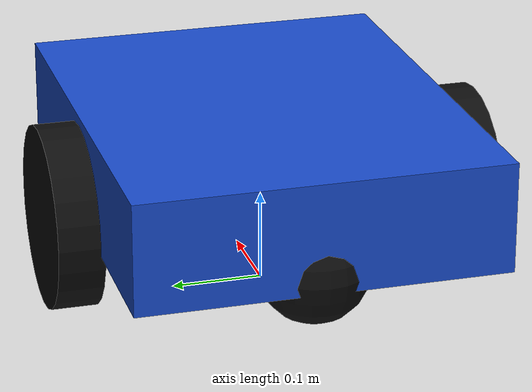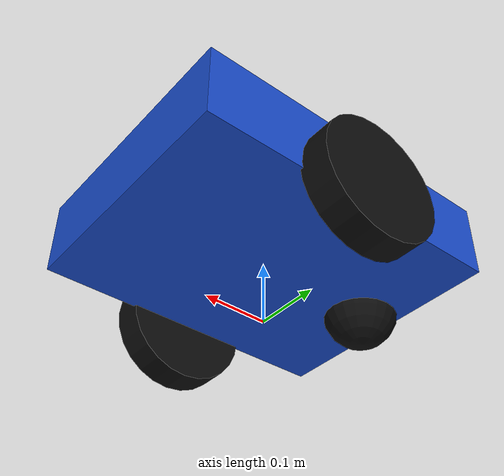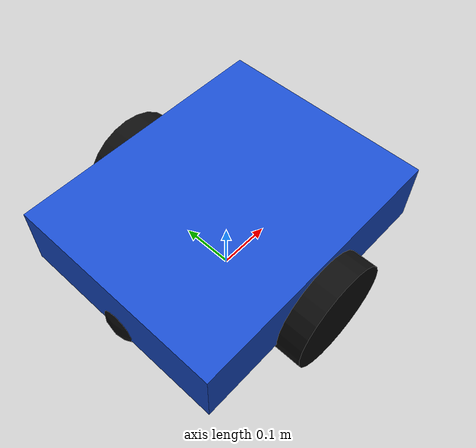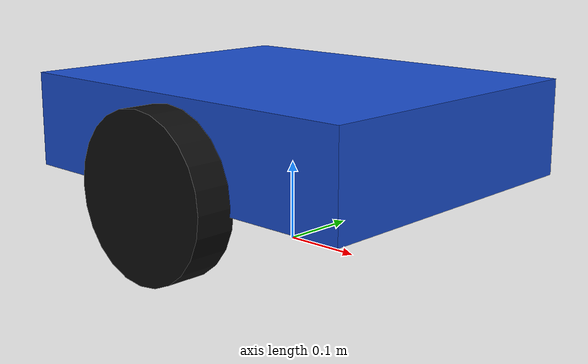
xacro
<?xml version="1.0"?>

<robot xmlns:xacro="http://www.ros.org/wiki/xacro"
       name="three_wheel_robot">

  <!-- ROBOT PARAMETERS          -->

  <xacro:property name="chassis_length" value="0.50"/>
  <xacro:property name="chassis_width"  value="0.40"/>
  <xacro:property name="chassis_height" value="0.12"/>

  <xacro:property name="wheel_radius" value="0.10"/>
  <xacro:property name="wheel_width"  value="0.05"/>

  <xacro:property name="wheel_separation" value="0.44"/>

  <xacro:property name="base_height" value="0.15"/>

  <!-- MATERIALS                 -->

  <material name="blue">
    <color rgba="0.1 0.3 0.8 1.0"/>
  </material>

  <material name="black">
    <color rgba="0.05 0.05 0.05 1.0"/>
  </material>

  <!-- BASE LINK                 -->

  <link name="base_link">

    <visual>
      <origin xyz="0 0 ${base_height}" rpy="0 0 0"/>

      <geometry>
        <box size="${chassis_length} ${chassis_width} ${chassis_height}"/>
      </geometry>

      <material name="blue"/>
    </visual>

    <collision>
      <origin xyz="0 0 ${base_height}" rpy="0 0 0"/>

      <geometry>
        <box size="${chassis_length} ${chassis_width} ${chassis_height}"/>
      </geometry>
    </collision>

    <inertial>
      <origin xyz="0 0 ${base_height}" rpy="0 0 0"/>

      <mass value="5.0"/>

      <inertia
        ixx="0.1"
        ixy="0.0"
        ixz="0.0"
        iyy="0.1"
        iyz="0.0"
        izz="0.1"/>
    </inertial>

  </link>

  <!-- LEFT WHEEL                -->

  <link name="left_wheel">

    <visual>
      <origin xyz="0 0 0" rpy="1.5708 0 0"/>

      <geometry>
        <cylinder
          radius="${wheel_radius}"
          length="${wheel_width}"/>
      </geometry>

      <material name="black"/>
    </visual>

    <collision>
      <origin xyz="0 0 0" rpy="1.5708 0 0"/>

      <geometry>
        <cylinder
          radius="${wheel_radius}"
          length="${wheel_width}"/>
      </geometry>
    </collision>

    <inertial>
      <mass value="0.5"/>

      <inertia
        ixx="0.01"
        ixy="0.0"
        ixz="0.0"
        iyy="0.01"
        iyz="0.0"
        izz="0.01"/>
    </inertial>

  </link>

  <!-- RIGHT WHEEL               -->

  <link name="right_wheel">

    <visual>
      <origin xyz="0 0 0" rpy="1.5708 0 0"/>

      <geometry>
        <cylinder
          radius="${wheel_radius}"
          length="${wheel_width}"/>
      </geometry>

      <material name="black"/>
    </visual>

    <collision>
      <origin xyz="0 0 0" rpy="1.5708 0 0"/>

      <geometry>
        <cylinder
          radius="${wheel_radius}"
          length="${wheel_width}"/>
      </geometry>
    </collision>

    <inertial>
      <mass value="0.5"/>

      <inertia
        ixx="0.01"
        ixy="0.0"
        ixz="0.0"
        iyy="0.01"
        iyz="0.0"
        izz="0.01"/>
    </inertial>

  </link>

  <!-- LEFT WHEEL JOINT          -->

  <joint name="left_wheel_joint"
         type="continuous">

    <parent link="base_link"/>
    <child link="left_wheel"/>

    <origin
      xyz="0 ${wheel_separation/2} ${wheel_radius}"
      rpy="0 0 0"/>

    <axis xyz="0 1 0"/>

  </joint>

  <!-- RIGHT WHEEL JOINT         -->

  <joint name="right_wheel_joint"
         type="continuous">

    <parent link="base_link"/>
    <child link="right_wheel"/>

    <origin
      xyz="0 -${wheel_separation/2} ${wheel_radius}"
      rpy="0 0 0"/>

    <axis xyz="0 1 0"/>

  </joint>

  <!-- CASTER WHEEL              -->

  <link name="caster_wheel">

    <visual>

      <geometry>
        <sphere radius="0.06"/>
      </geometry>

      <material name="black"/>

    </visual>

    <collision>

      <geometry>
        <sphere radius="0.06"/>
      </geometry>

    </collision>

    <inertial>

      <mass value="0.2"/>

      <inertia
        ixx="0.001"
        ixy="0.0"
        ixz="0.0"
        iyy="0.001"
        iyz="0.0"
        izz="0.001"/>

    </inertial>

  </link>

  <joint name="caster_joint"
         type="fixed">

    <parent link="base_link"/>
    <child link="caster_wheel"/>

    <origin
      xyz="-0.20 0 ${wheel_radius}"
      rpy="0 0 0"/>

  </joint>
    <!-- ROS 2 CONTROL -->

  <ros2_control name="ThreeWheelRobotSystem" type="system">

    <hardware>
      <plugin>gz_ros2_control/GazeboSimSystem</plugin>
    </hardware>

    <joint name="left_wheel_joint">

      <command_interface name="velocity">
        <param name="min">-10</param>
        <param name="max">10</param>
      </command_interface>

      <state_interface name="position"/>
      <state_interface name="velocity"/>

    </joint>

    <joint name="right_wheel_joint">

      <command_interface name="velocity">
        <param name="min">-10</param>
        <param name="max">10</param>
      </command_interface>

      <state_interface name="position"/>
      <state_interface name="velocity"/>

    </joint>

  </ros2_control>

  <!-- Gazebo ROS 2 Control Plugin -->

  <gazebo>
  <plugin
    filename="gz_ros2_control-system"
    name="gz_ros2_control::GazeboSimROS2ControlPlugin">

    <parameters>$(find three_wheel_robot)/config/controllers.yaml</parameters>

  </plugin>
</gazebo>
</robot>
